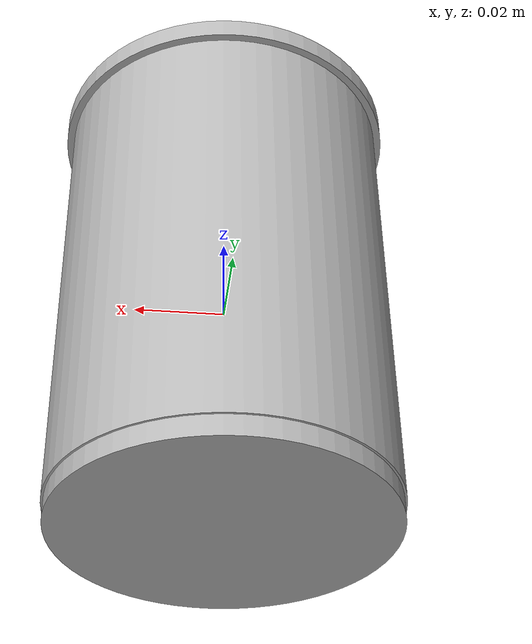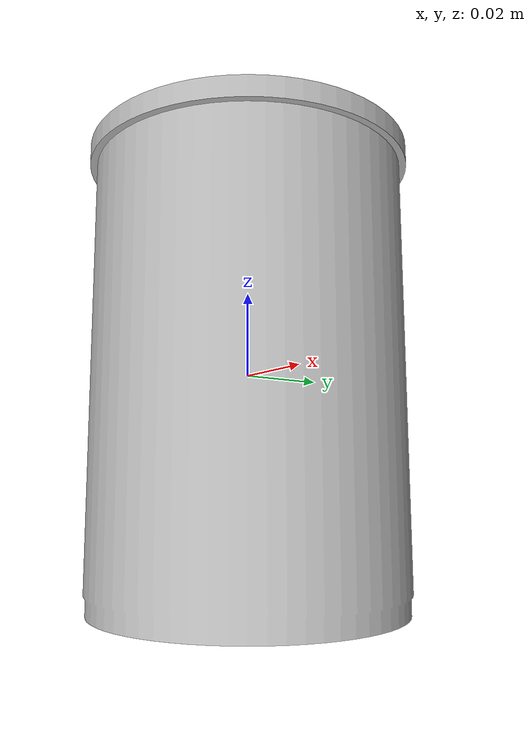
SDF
<?xml version='1.0'?>
<sdf version='1.6'>
  <model name='standard_can_fit'>
    <link name='link_0'>
      <inertial>
        <mass>0.4</mass>
        <inertia>
          <ixx>0.000936</ixx>
          <ixy>0</ixy>
          <ixz>0</ixz>
          <iyy>0.000936</iyy>
          <iyz>0</iyz>
          <izz>0.001066</izz>
        </inertia>
      </inertial>
      <pose frame=''>-0 0 0 0 -0 0</pose>
      <visual name='visual'>
        <pose frame=''>0 0 0 0 -0 0</pose>
        <geometry>
          <mesh>
            <uri>model://standard_can_fit/standard_can_fit.dae</uri>
            <scale>1 1 1</scale>
          </mesh>
        </geometry>
        <transparency>0</transparency>
        <cast_shadows>1</cast_shadows>
      </visual>
      <collision name='collision'>
        <laser_retro>0</laser_retro>
        <max_contacts>10</max_contacts>
        <pose frame=''>0 0 0 0 -0 0</pose>
        <geometry>
          <mesh>
            <uri>model://standard_can_fit/standard_can_fit.dae</uri>
            <scale>1 1 1</scale>
          </mesh>
        </geometry>
        <surface>
          <friction>
            <ode>
              <mu>1</mu>
              <mu2>1</mu2>
              <fdir1>0 0 0</fdir1>
              <slip1>0</slip1>
              <slip2>0</slip2>
            </ode>
            <torsional>
              <coefficient>1</coefficient>
              <patch_radius>0</patch_radius>
              <surface_radius>0</surface_radius>
              <use_patch_radius>1</use_patch_radius>
              <ode>
                <slip>0</slip>
              </ode>
            </torsional>
          </friction>
          <bounce>
            <restitution_coefficient>0</restitution_coefficient>
            <threshold>1e+06</threshold>
          </bounce>
          <contact>
            <collide_without_contact>0</collide_without_contact>
            <collide_without_contact_bitmask>1</collide_without_contact_bitmask>
            <collide_bitmask>1</collide_bitmask>
            <ode>
              <soft_cfm>0</soft_cfm>
              <soft_erp>0.2</soft_erp>
              <kp>1e+13</kp>
              <kd>1</kd>
              <max_vel>0.0</max_vel>
              <min_depth>0.01</min_depth> <!-- Value needs to be 0.01 to allow stacking of object without jitter-->
            </ode>
            <bullet>
              <split_impulse>1</split_impulse>
              <split_impulse_penetration_threshold>-0.01</split_impulse_penetration_threshold>
              <soft_cfm>0</soft_cfm>
              <soft_erp>0.2</soft_erp>
              <kp>1e+13</kp>
              <kd>1</kd>
            </bullet>
          </contact>
        </surface>
      </collision>
    </link>
    <static>0</static>
    <allow_auto_disable>1</allow_auto_disable>
  </model>
</sdf>
